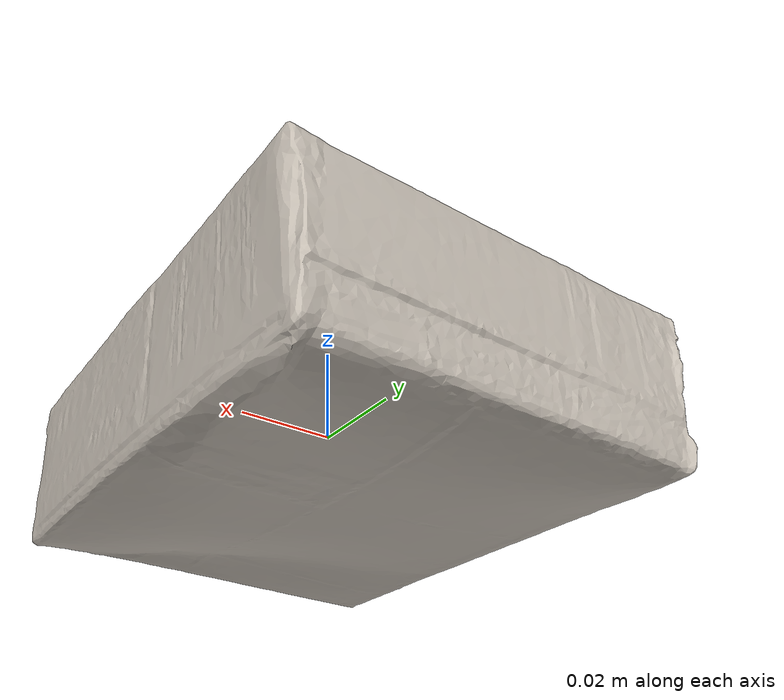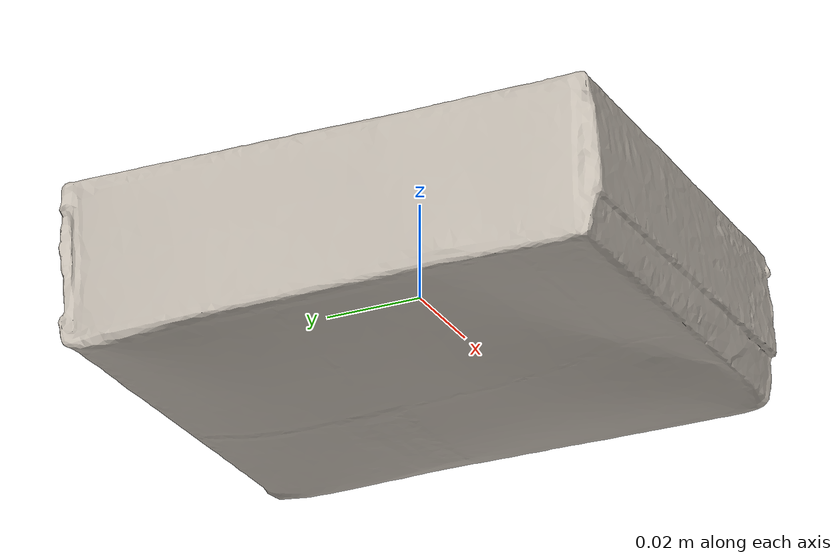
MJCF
<mujoco model="pudding_box">
  <compiler angle="radian" />

  <asset>
    <mesh name="pudding_box_visual_mesh" file="pudding_box/textured.obj" />
    <mesh name="pudding_box_collision_mesh_0" file="pudding_box/textured_coacd_0.stl" />
    <mesh name="pudding_box_collision_mesh_1" file="pudding_box/textured_coacd_1.stl" />
    <texture name="pudding_box_texture" type="2d" file="pudding_box/texture_map.png" />
    <material name="pudding_box_material" texture="pudding_box_texture" />
  </asset>

  <worldbody>
    <body name="pudding_box" pos="0 0 0" euler="0 0 0">
      <freejoint name="pudding_box_joint" />
      <geom name="pudding_box_visual_geom" type="mesh" mesh="pudding_box_visual_mesh" material="pudding_box_material" pos="-0.0 -0.0 -0.0" euler="0 0 0" contype="0" conaffinity="0" group="0" />
      <geom name="pudding_box_collision_geom_0" type="mesh" mesh="pudding_box_collision_mesh_0" pos="-0.0 -0.0 -0.0" euler="0 0 0" contype="1" conaffinity="1" group="3" />
      <geom name="pudding_box_collision_geom_1" type="mesh" mesh="pudding_box_collision_mesh_1" pos="-0.0 -0.0 -0.0" euler="0 0 0" contype="1" conaffinity="1" group="3" />
      <inertial pos="0 0 0" euler="0 0 0" mass="0.187" diaginertia="0.001 0.001 0.001" />
    </body>
  </worldbody>
</mujoco>
